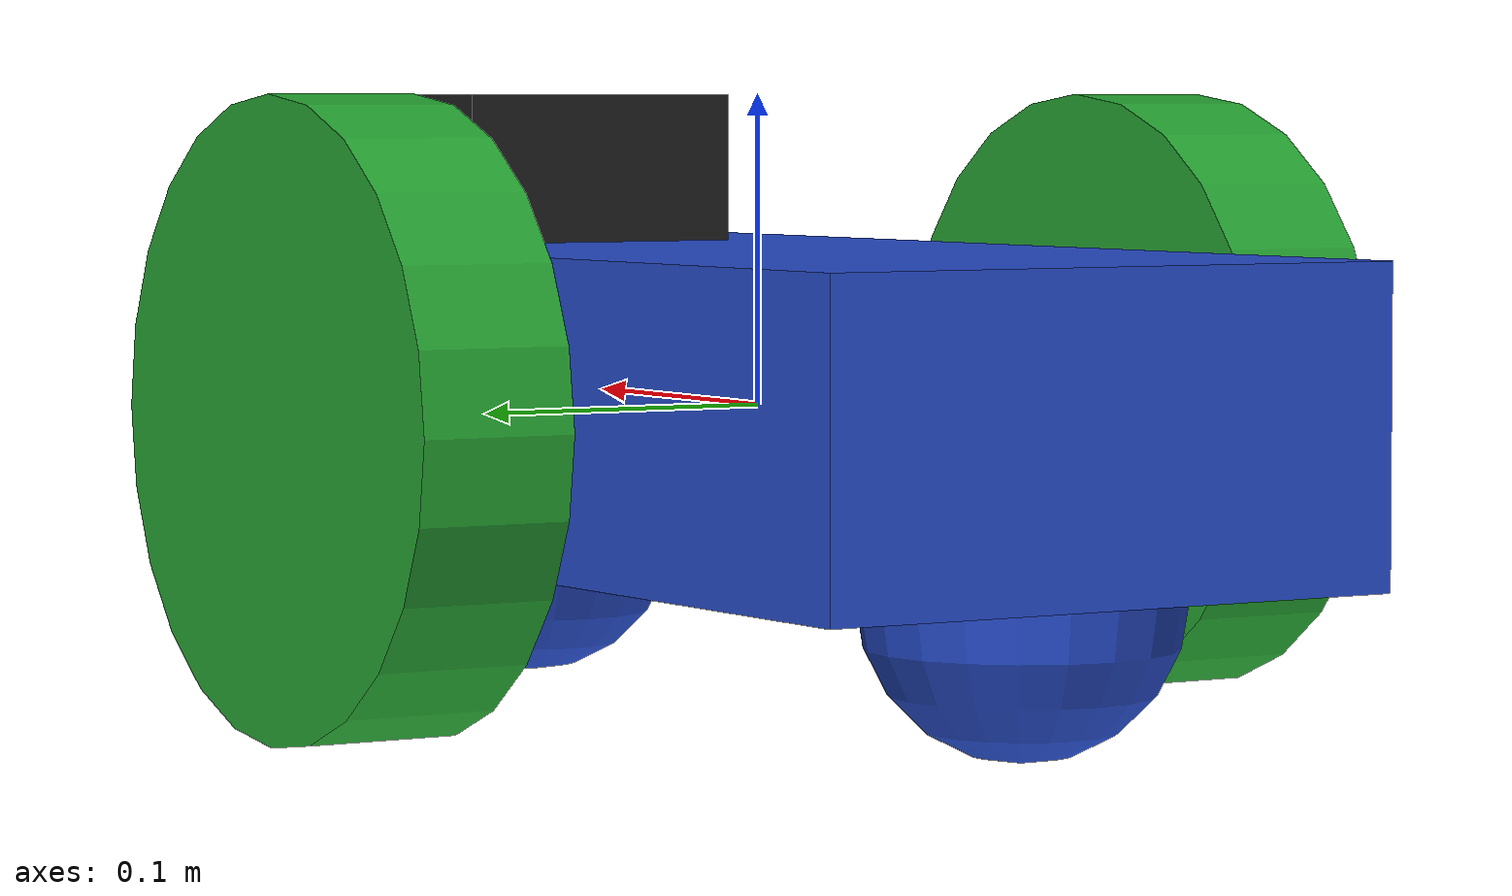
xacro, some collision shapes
<?xml version='1.0'?>

<robot name="my_robot" xmlns:xacro="http://www.ros.org/wiki/xacro">
<xacro:include filename="$(find my_robot)/urdf/my_robot.gazebo" />
                                                  <link name="robot_footprint"></link>

                                                  <joint name="robot_footprint_joint" type="fixed">
                                                    <origin xyz="0 0 0" rpy="0 0 0" />
                                                    <parent link="robot_footprint"/>
                                                    <child link="chassis" />
                                                  </joint>

                                                  <link name='chassis'>
                                                    <pose>0 0 0.1 0 0 0</pose>

                                                    <inertial>
                                                      <mass value="15.0"/>
                                                      <origin xyz="0.0 0 0" rpy=" 0 0 0"/>
                                                      <inertia
                                                          ixx="0.1" ixy="0" ixz="0"
                                                          iyy="0.1" iyz="0"
                                                          izz="0.1"
                                                      />
                                                    </inertial>

                                                    <collision name='collision'>
                                                      <origin xyz="0 0 0" rpy=" 0 0 0"/>
                                                      <geometry>
                                                        <box size=".4 .2 .1"/>
                                                      </geometry>
                                                    </collision>

                                                    <visual name='chassis_visual'>
                                                      <origin xyz="0 0 0" rpy=" 0 0 0"/>
                                                      <geometry>
                                                        <box size=".4 .2 .1"/>
                                                      </geometry>
                                                    </visual>

                                                    <collision name='back_caster_collision'>
                                                      <origin xyz="-0.15 0 -0.05" rpy=" 0 0 0"/>
                                                      <geometry>
                                                        <sphere radius="0.0499"/>
                                                      </geometry>
                                                    </collision>

                                                    <visual name='back_caster_visual'>
                                                      <origin xyz="-0.15 0 -0.05" rpy=" 0 0 0"/>
                                                      <geometry>
                                                        <sphere radius="0.05"/>
                                                      </geometry>
                                                    </visual>

                                                    <collision name='front_caster_collision'>
                                                      <origin xyz="0.15 0 -0.05" rpy=" 0 0 0"/>
                                                      <geometry>
                                                        <sphere radius="0.0499"/>
                                                      </geometry>
                                                    </collision>

                                                    <visual name='front_caster_visual'>
                                                      <origin xyz="0.15 0 -0.05" rpy=" 0 0 0"/>
                                                      <geometry>
                                                        <sphere radius="0.05"/>
                                                      </geometry>
                                                    </visual>

                                                  </link>
<!-- Left wheel -->
<link name="left_wheel">
  <collision>
    <origin xyz="0 0 0" rpy="0 1.5707 1.5707"/>
    <geometry>
      <cylinder radius="0.1" length="0.05"/>
    </geometry>
  </collision>

  <visual>
    <origin xyz="0 0 0" rpy="0 1.5707 1.5707"/>
    <geometry>
      <cylinder radius="0.1" length="0.05"/>
    </geometry>
  </visual>

  <inertial>
    <origin xyz="0 0 0" rpy="0 1.5707 1.5707"/>
    <mass value="5"/>
    <inertia ixx="0.1" ixy="0" ixz="0" iyy="0.1" iyz="0" izz="0.1"/>
  </inertial>
</link>

<!-- Right wheel -->
<link name="right_wheel">
  <collision>
    <origin xyz="0 0 0" rpy="0 1.5707 1.5707"/>
    <geometry>
      <cylinder radius="0.1" length="0.05"/>
    </geometry>
  </collision>

  <visual>
    <origin xyz="0 0 0" rpy="0 1.5707 1.5707"/>
    <geometry>
      <cylinder radius="0.1" length="0.05"/>
    </geometry>
  </visual>

  <inertial>
    <origin xyz="0 0 0" rpy="0 1.5707 1.5707"/>
    <mass value="5"/>
    <inertia ixx="0.1" ixy="0" ixz="0" iyy="0.1" iyz="0" izz="0.1"/>
  </inertial>
</link>

<!-- Left wheel joint -->
<joint type="continuous" name="left_wheel_hinge">
  <origin xyz="0 0.15 0" rpy="0 0 0"/>
  <child link="left_wheel"/>
  <parent link="chassis"/>
  <axis xyz="0 1 0" rpy="0 0 0"/>
  <limit effort="10000" velocity="1000"/>
  <dynamics damping="1.0" friction="1.0"/>
</joint>

<!-- Right wheel joint -->
<joint type="continuous" name="right_wheel_hinge">
  <origin xyz="0 -0.15 0" rpy="0 0 0"/>
  <child link="right_wheel"/>
  <parent link="chassis"/>
  <axis xyz="0 1 0" rpy="0 0 0"/>
  <limit effort="10000" velocity="1000"/>
  <dynamics damping="1.0" friction="1.0"/>
</joint>

<!-- Camera link -->
<link name="camera">
  <collision>
    <origin xyz="0 0 0" rpy="0 0 0"/>
    <geometry>
      <box size="0.05 0.05 0.05"/>
    </geometry>
  </collision>

  <visual>
    <origin xyz="0 0 0" rpy="0 0 0"/>
    <geometry>
      <box size="0.05 0.05 0.05"/>
    </geometry>
  </visual>

  <inertial>
    <origin xyz="0 0 0" rpy="0 0 0"/>
    <mass value="0.1"/>
    <inertia ixx="1e-6" ixy="0" ixz="0" iyy="1e-6" iyz="0" izz="1e-6"/>
  </inertial>
</link>

<!-- Camera joint -->
<joint name="camera_joint" type="fixed">
  <origin xyz="0.2 0 0" rpy="0 0 0"/>
  <parent link="chassis"/>
  <child link="camera"/>
  <axis xyz="0 1 0"/>
</joint>

  <joint name="camera_optical_joint" type="fixed">
    <origin xyz="0 0 0" rpy="-1.5707 0 -1.5707"/>
    <parent link="camera"/>
    <child link="camera_link_optical"/>
  </joint>

  <link name="camera_link_optical">
  </link>

<!-- Hokuyo lidar link -->
<link name="hokuyo">
  <collision>
    <origin xyz="0 0 0" rpy="0 0 0"/>
    <geometry>
      <box size="0.1 0.1 0.1"/>
    </geometry>
  </collision>

  <visual>
    <origin xyz="0 0 0" rpy="0 0 0"/>
    <geometry>
      <mesh filename="package://my_robot/meshes/hokuyo.dae"/>
    </geometry>
  </visual>

  <inertial>
    <origin xyz="0 0 0" rpy="0 0 0"/>
    <mass value="1e-5"/>
    <inertia ixx="1e-6" ixy="0" ixz="0"
             iyy="1e-6" iyz="0" izz="1e-6"/>
  </inertial>
</link>

<!-- Hokuyo lidar joint -->
<joint name="hokuyo_joint" type="fixed">
  <origin xyz="0.15 0 0.05" rpy="0 0 0"/>
  <parent link="chassis"/>
  <child link="hokuyo"/>
  <axis xyz="0 1 0"/>
</joint>

<gazebo reference="chassis">
  <material>Gazebo/Blue</material>
</gazebo>

<gazebo reference="left_wheel">
  <material>Gazebo/Green</material>
</gazebo>

<gazebo reference="right_wheel">
  <material>Gazebo/Green</material>
</gazebo>

<gazebo reference="camera">
  <material>Gazebo/Red</material>
</gazebo>

<gazebo reference="hokuyo">
  <material>Gazebo/Black</material>
</gazebo>

</robot>
